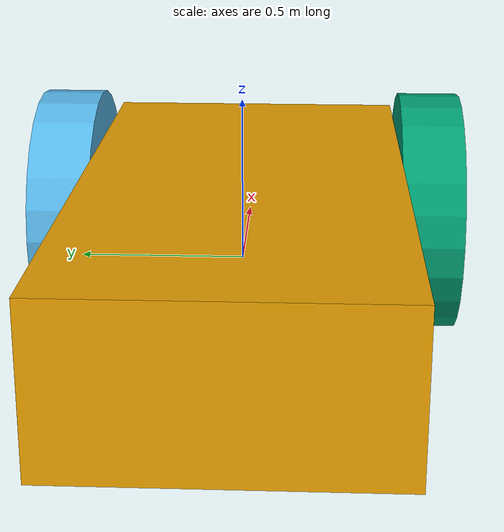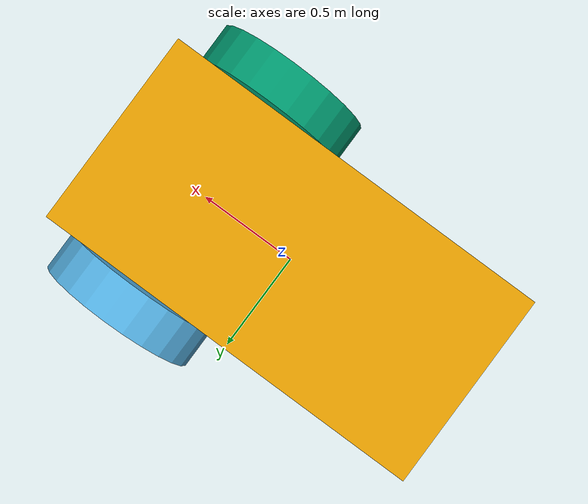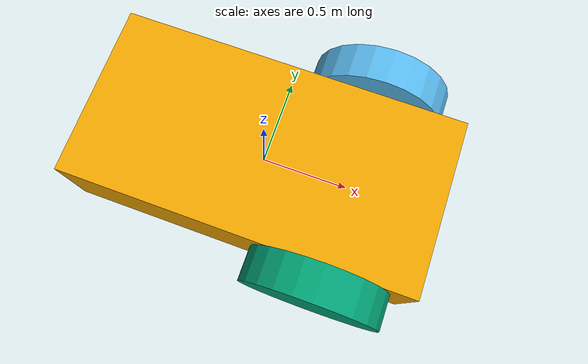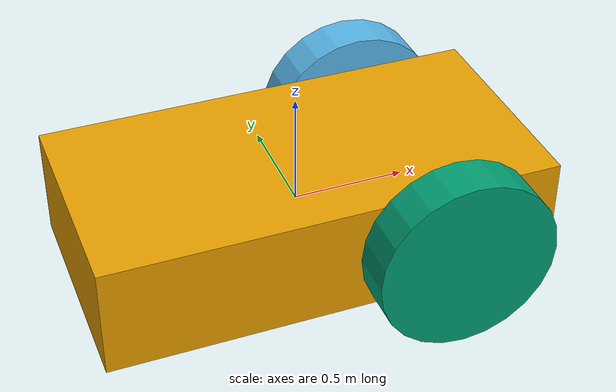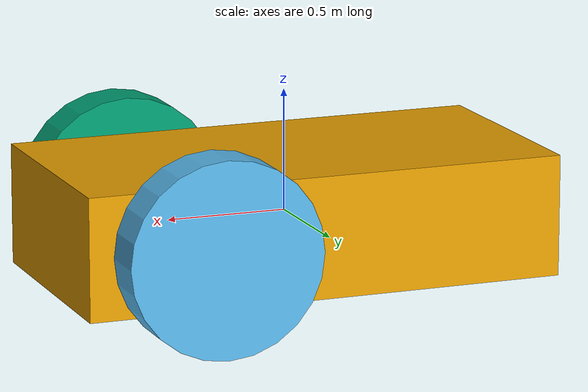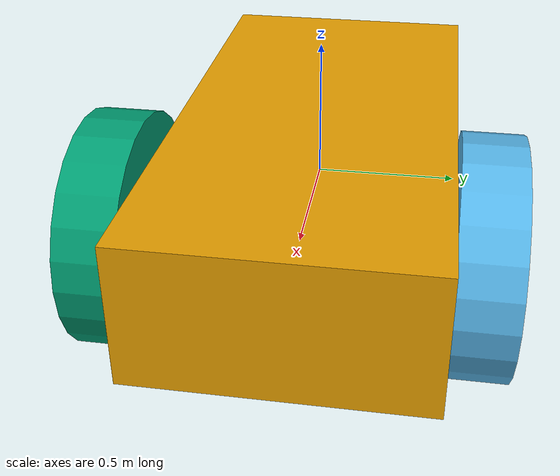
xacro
<?xml version="1.0"?>
<robot xmlns:xacro="http://www.ros.org/wiki/xacro" name="test">
  <!-- base -->
  <link name="base_link">
    <inertial>
        <mass value="1.14395"/>
        <inertia ixx="0.095329" ixy="0" ixz="0" iyy="0.381317" iyz="0" izz="0.476646"/>
    </inertial>
    <visual>
      <geometry>
        <box size="2.0 1.0 0.5"/>
      </geometry>
    </visual>
    <collision>
      <geometry>
        <box size="2.0 1.0 0.5"/>
      </geometry>
    </collision>
  </link>

  <!-- wheels -->
  <xacro:macro name="wheel" params="name x y">
    <link name="${name}_link">
      <inertial>
        <mass value="1"/>
        <inertia ixx="0.043333" ixy="0" ixz="0" iyy="0.043333" iyz="0" izz="0.08"/>
      </inertial>
      <visual>
        <origin xyz="0.0 0.0 0.0" rpy="0.0 0.0 0.0"/>
        <geometry>
          <cylinder radius="0.4" length="0.2"/>
        </geometry>
      </visual>
      <collision>
        <origin xyz="0.0 0.0 0.0" rpy="0.0 0.0 0.0"/>
        <geometry>
          <cylinder radius="0.4" length="0.2"/>
        </geometry>
      </collision>
    </link>
    <joint name="${name}_joint" type="continuous">
      <origin xyz="${x} ${y} 0.0" rpy="1.5707 0.0 0.0"/>
      <parent link="base_link"/>
      <child link="${name}_link"/>
      <axis xyz="0.0 0.0 1.0"/>
    </joint>
  </xacro:macro>

  <xacro:wheel name="fl" x="0.5" y="0.6"/>
  <xacro:wheel name="fr" x="0.5" y="-0.6"/>

  <!-- plugins -->
  <gazebo>
  <plugin
    filename="ignition-gazebo-diff-drive-system"
    name="ignition::gazebo::systems::DiffDrive">
    <left_joint>fl_joint</left_joint>
    <right_joint>fr_joint</right_joint>
    <wheel_separation>1</wheel_separation>
    <wheel_radius>0.4</wheel_radius>
    <odom_publish_frequency>1</odom_publish_frequency>
    <topic>cmd_vel</topic>
  </plugin>
  </gazebo>
</robot>
